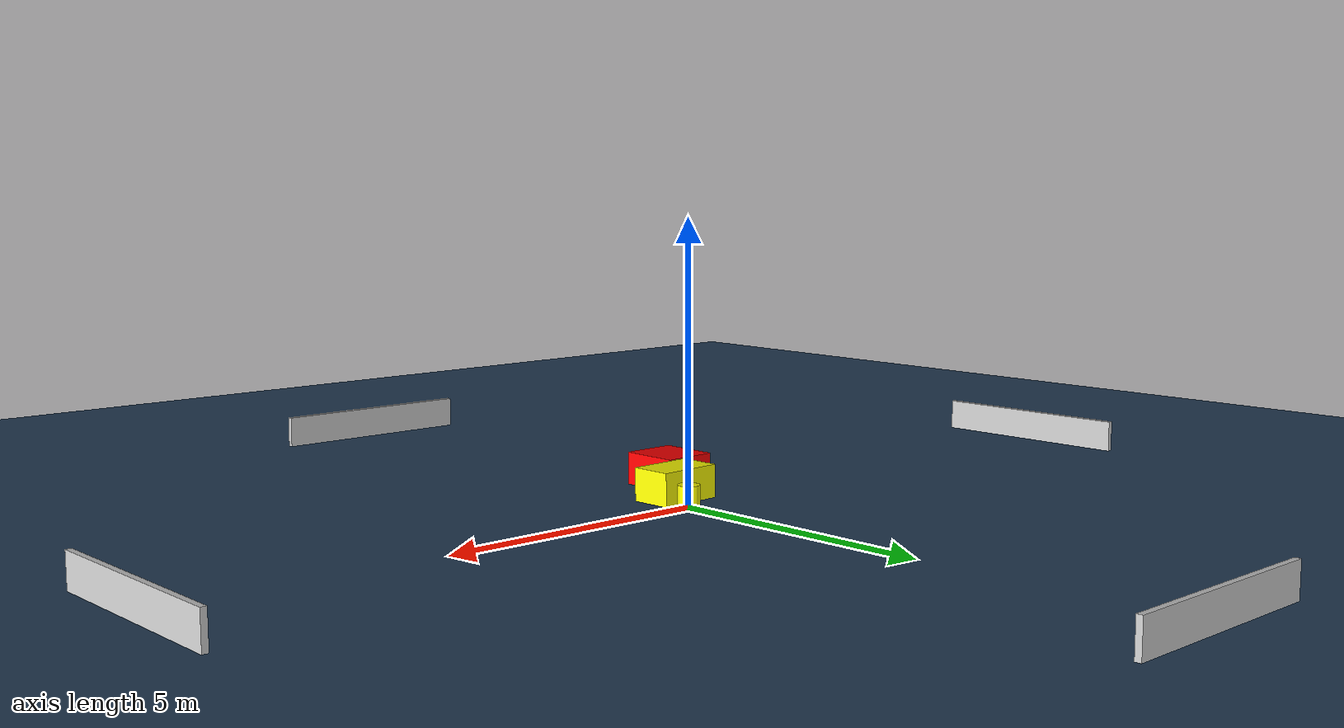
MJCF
<?xml version="1.0" ?>
<mujoco model="generated_environment">
  <option timestep="0.01" integrator="RK4" cone="elliptic"/>
  <default>
    <geom density="1"/>
  </default>
  <asset>
    <texture builtin="gradient" height="3072" name="skybox" rgb1="0.3 0.5 0.7" rgb2="0 0 0" type="skybox" width="512"/>
    <texture builtin="checker" height="300" name="groundplane" rgb1="0.2 0.3 0.4" rgb2="0.1 0.2 0.3" type="2d" width="300"/>
    <material name="groundplane" reflectance="0.2" texrepeat="5 5" texture="groundplane"/>
  </asset>
  <worldbody>
    <light dir="0 0 -1" directional="true" pos="0 0 1.5"/>
    <geom condim="3" friction="0.5 0.005 0.001" material="groundplane" name="floor" pos="0 0 0" size="0 0 0.05" type="plane"/>
    <body name="walls">
      <geom name="wall_1" condim="4" pos="-10.0 0.0 0.3" rgba="0.800000011920929 0.800000011920929 0.800000011920929 1.0" size="0.05 2.0 0.3" type="box"/>
      <geom name="wall_2" condim="4" pos="10.0 0.0 0.3" rgba="0.800000011920929 0.800000011920929 0.800000011920929 1.0" size="0.05 2.0 0.3" type="box"/>
      <geom name="wall_3" condim="4" pos="0.0 -10.0 0.3" rgba="0.800000011920929 0.800000011920929 0.800000011920929 1.0" size="2.0 0.05 0.3" type="box"/>
      <geom name="wall_4" condim="4" pos="0.0 10.0 0.3" rgba="0.800000011920929 0.800000011920929 0.800000011920929 1.0" size="2.0 0.05 0.3" type="box"/>
    </body>
    <body name="robot">
      <joint name="joint_x" type="slide" pos="0 0 0" axis="1 0 0"/>
      <joint name="joint_y" type="slide" pos="0 0 0" axis="0 1 0"/>
      <geom name="robot" type="cylinder" pos="0.0 0.0 0.2" size="0.2 0.2 0.0" mass="5.0" friction="1.0 0.005 0.0001" condim="4" rgba="1.0 1.0 0.0 1.0"/>
    </body>
    <body name="obstacle_1_movable">
      <geom name="obstacle_1_movable" condim="4" pos="-0.29231890715674574 -0.6511503846653816 0.3" euler="0 0 91.75910937003904" friction="0.0 0.005 0.001" rgba="1.0 1.0 0.0 1.0" size="0.38489632426150877 0.6064566605511976 0.3" type="box" mass="0.1"/>
      <joint type="free"/>
    </body>
    <body name="obstacle_2_static">
      <geom name="obstacle_2_static" condim="4" pos="-1.08656031920645 -1.678040941563173 0.3" euler="0 0 270.72546793145256" friction="0.0 0.005 0.001" rgba="1.0 0.0 0.0 1.0" size="0.5554293428246342 0.5068954146592866 0.3" type="box"/>
    </body>
  </worldbody>
  <actuator>
    <motor name="actuator_x" joint="joint_x" gear="1" ctrlrange="-1 1"/>
    <motor name="actuator_y" joint="joint_y" gear="1" ctrlrange="-1 1"/>
  </actuator>
</mujoco>
